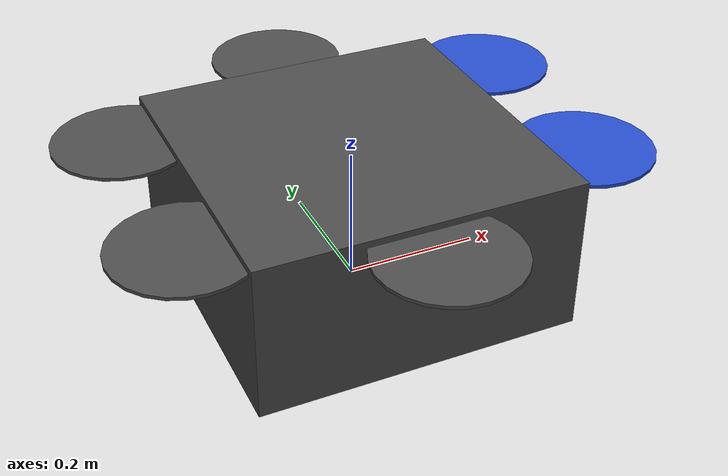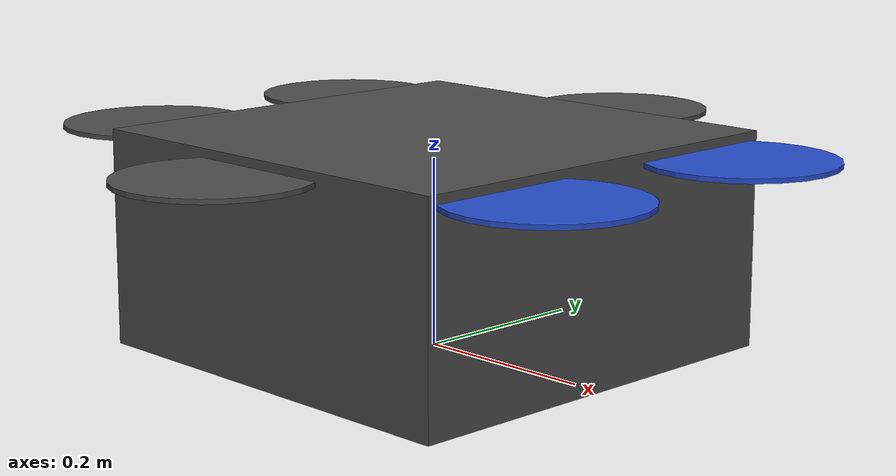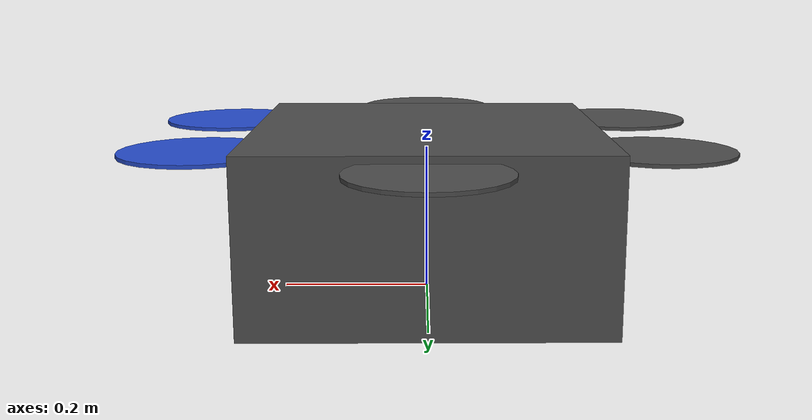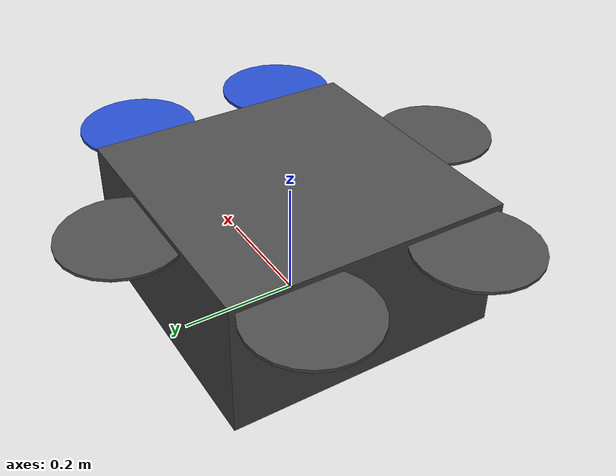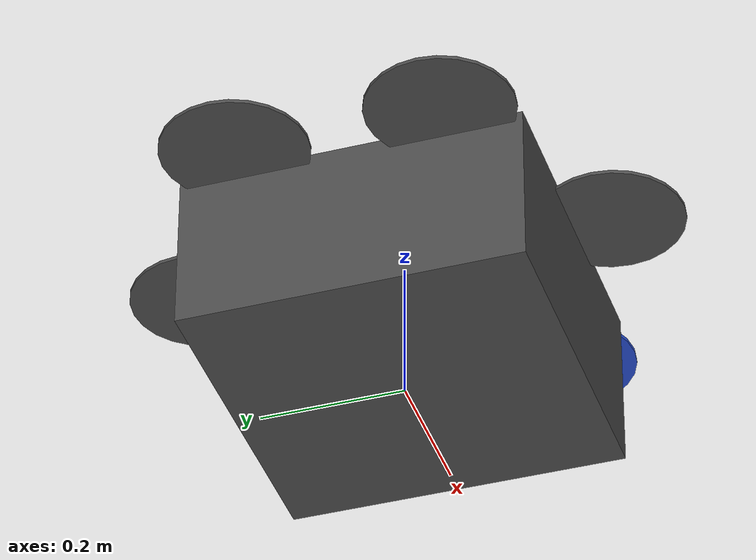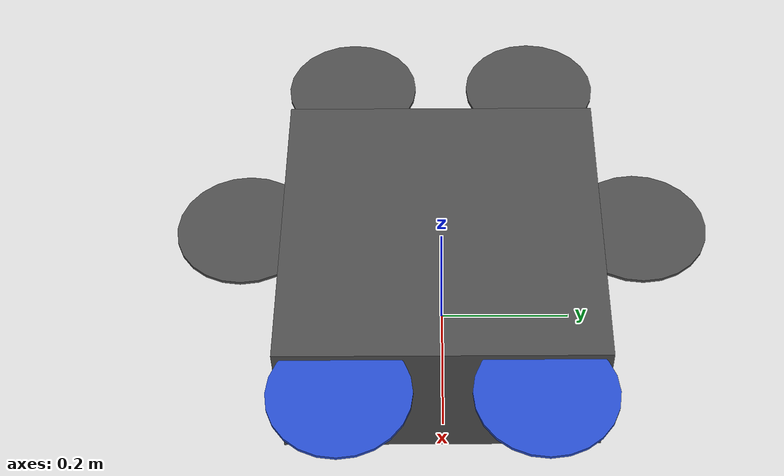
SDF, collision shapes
<?xml version='1.0'?>
<sdf version="1.6" xmlns:xacro='http://ros.org/wiki/xacro'>
  <model name="iris_demo">
    <include>
      <uri>model://iris_with_standoffs</uri>
    </include>

    <!-- plugins -->
    <plugin name="rotor_0_blade_1" filename="libLiftDragPlugin.so">
      <a0>0.3</a0>
      <alpha_stall>1.4</alpha_stall>
      <cla>4.2500</cla>
      <cda>0.10</cda>
      <cma>0.00</cma>
      <cla_stall>-0.025</cla_stall>
      <cda_stall>0.0</cda_stall>
      <cma_stall>0.0</cma_stall>
      <area>0.002</area>
      <air_density>1.2041</air_density>
      <cp>0.084 0 0</cp>
      <forward>0 -1 0</forward>
      <upward>0 0 1</upward>
      <link_name>iris::rotor_0</link_name>
    </plugin>
    <plugin name="rotor_0_blade_2" filename="libLiftDragPlugin.so">
      <a0>0.3</a0>
      <alpha_stall>1.4</alpha_stall>
      <cla>4.2500</cla>
      <cda>0.10</cda>
      <cma>0.00</cma>
      <cla_stall>-0.025</cla_stall>
      <cda_stall>0.0</cda_stall>
      <cma_stall>0.0</cma_stall>
      <area>0.002</area>
      <air_density>1.2041</air_density>
      <cp>-0.084 0 0</cp>
      <forward>0 1 0</forward>
      <upward>0 0 1</upward>
      <link_name>iris::rotor_0</link_name>
    </plugin>

    <plugin name="rotor_1_blade_1" filename="libLiftDragPlugin.so">
      <a0>0.3</a0>
      <alpha_stall>1.4</alpha_stall>
      <cla>4.2500</cla>
      <cda>0.10</cda>
      <cma>0.00</cma>
      <cla_stall>-0.025</cla_stall>
      <cda_stall>0.0</cda_stall>
      <cma_stall>0.0</cma_stall>
      <area>0.002</area>
      <air_density>1.2041</air_density>
      <cp>0.084 0 0</cp>
      <forward>0 1 0</forward>
      <upward>0 0 1</upward>
      <link_name>iris::rotor_1</link_name>
    </plugin>
    <plugin name="rotor_1_blade_2" filename="libLiftDragPlugin.so">
      <a0>0.3</a0>
      <alpha_stall>1.4</alpha_stall>
      <cla>4.2500</cla>
      <cda>0.10</cda>
      <cma>0.00</cma>
      <cla_stall>-0.025</cla_stall>
      <cda_stall>0.0</cda_stall>
      <cma_stall>0.0</cma_stall>
      <area>0.002</area>
      <air_density>1.2041</air_density>
      <cp>-0.084 0 0</cp>
      <forward>0 -1 0</forward>
      <upward>0 0 1</upward>
      <link_name>iris::rotor_1</link_name>
    </plugin>

    <plugin name="rotor_2_blade_1" filename="libLiftDragPlugin.so">
      <a0>0.3</a0>
      <alpha_stall>1.4</alpha_stall>
      <cla>4.2500</cla>
      <cda>0.10</cda>
      <cma>0.00</cma>
      <cla_stall>-0.025</cla_stall>
      <cda_stall>0.0</cda_stall>
      <cma_stall>0.0</cma_stall>
      <area>0.002</area>
      <air_density>1.2041</air_density>
      <cp>0.084 0 0</cp>
      <forward>0 -1 0</forward>
      <upward>0 0 1</upward>
      <link_name>iris::rotor_2</link_name>
    </plugin>
    <plugin name="rotor_2_blade_2" filename="libLiftDragPlugin.so">
      <a0>0.3</a0>
      <alpha_stall>1.4</alpha_stall>
      <cla>4.2500</cla>
      <cda>0.10</cda>
      <cma>0.00</cma>
      <cla_stall>-0.025</cla_stall>
      <cda_stall>0.0</cda_stall>
      <cma_stall>0.0</cma_stall>
      <area>0.002</area>
      <air_density>1.2041</air_density>
      <cp>-0.084 0 0</cp>
      <forward>0 1 0</forward>
      <upward>0 0 1</upward>
      <link_name>iris::rotor_2</link_name>
    </plugin>

    <plugin name="rotor_3_blade_1" filename="libLiftDragPlugin.so">
      <a0>0.3</a0>
      <alpha_stall>1.4</alpha_stall>
      <cla>4.2500</cla>
      <cda>0.10</cda>
      <cma>0.00</cma>
      <cla_stall>-0.025</cla_stall>
      <cda_stall>0.0</cda_stall>
      <cma_stall>0.0</cma_stall>
      <area>0.002</area>
      <air_density>1.2041</air_density>
      <cp>0.084 0 0</cp>
      <forward>0 1 0</forward>
      <upward>0 0 1</upward>
      <link_name>iris::rotor_3</link_name>
    </plugin>
    <plugin name="rotor_3_blade_2" filename="libLiftDragPlugin.so">
      <a0>0.3</a0>
      <alpha_stall>1.4</alpha_stall>
      <cla>4.2500</cla>
      <cda>0.10</cda>
      <cma>0.00</cma>
      <cla_stall>-0.025</cla_stall>
      <cda_stall>0.0</cda_stall>
      <cma_stall>0.0</cma_stall>
      <area>0.002</area>
      <air_density>1.2041</air_density>
      <cp>-0.084 0 0</cp>
      <forward>0 -1 0</forward>
      <upward>0 0 1</upward>
      <link_name>iris::rotor_3</link_name>
    </plugin>

    <plugin name="rotor_4_blade_1" filename="libLiftDragPlugin.so">
      <a0>0.3</a0>
      <alpha_stall>1.4</alpha_stall>
      <cla>4.2500</cla>
      <cda>0.10</cda>
      <cma>0.00</cma>
      <cla_stall>-0.025</cla_stall>
      <cda_stall>0.0</cda_stall>
      <cma_stall>0.0</cma_stall>
      <area>0.002</area>
      <air_density>1.2041</air_density>
      <cp>0.084 0 0</cp>
      <forward>0 1 0</forward>
      <upward>0 0 1</upward>
      <link_name>iris::rotor_4</link_name>
    </plugin>
    <plugin name="rotor_4_blade_2" filename="libLiftDragPlugin.so">
      <a0>0.3</a0>
      <alpha_stall>1.4</alpha_stall>
      <cla>4.2500</cla>
      <cda>0.10</cda>
      <cma>0.00</cma>
      <cla_stall>-0.025</cla_stall>
      <cda_stall>0.0</cda_stall>
      <cma_stall>0.0</cma_stall>
      <area>0.002</area>
      <air_density>1.2041</air_density>
      <cp>-0.084 0 0</cp>
      <forward>0 -1 0</forward>
      <upward>0 0 1</upward>
      <link_name>iris::rotor_4</link_name>
    </plugin>

    <plugin name="rotor_5_blade_1" filename="libLiftDragPlugin.so">
      <a0>0.3</a0>
      <alpha_stall>1.4</alpha_stall>
      <cla>4.2500</cla>
      <cda>0.10</cda>
      <cma>0.00</cma>
      <cla_stall>-0.025</cla_stall>
      <cda_stall>0.0</cda_stall>
      <cma_stall>0.0</cma_stall>
      <area>0.002</area>
      <air_density>1.2041</air_density>
      <cp>0.084 0 0</cp>
      <forward>0 -1 0</forward>
      <upward>0 0 1</upward>
      <link_name>iris::rotor_5</link_name>
    </plugin>
    <plugin name="rotor_5_blade_2" filename="libLiftDragPlugin.so">
      <a0>0.3</a0>
      <alpha_stall>1.4</alpha_stall>
      <cla>4.2500</cla>
      <cda>0.10</cda>
      <cma>0.00</cma>
      <cla_stall>-0.025</cla_stall>
      <cda_stall>0.0</cda_stall>
      <cma_stall>0.0</cma_stall>
      <area>0.002</area>
      <air_density>1.2041</air_density>
      <cp>-0.084 0 0</cp>
      <forward>0 1 0</forward>
      <upward>0 0 1</upward>
      <link_name>iris::rotor_5</link_name>
    </plugin>
    <plugin name="arducopter_plugin" filename="libArduPilotPlugin.so">
      <fdm_addr>127.0.0.1</fdm_addr>
      <fdm_port_in>9002</fdm_port_in>
      <fdm_port_out>9003</fdm_port_out>
      <!--
          Require by APM :
          Only change model and gazebo from XYZ to XY-Z coordinates
      -->
      <modelXYZToAirplaneXForwardZDown>0 0 0 3.141593 0 0</modelXYZToAirplaneXForwardZDown>
      <gazeboXYZToNED>0 0 0 3.141593 0 0</gazeboXYZToNED>
      <imuName>iris_demo::iris::iris/imu_link::imu_sensor</imuName>
      <connectionTimeoutMaxCount>5</connectionTimeoutMaxCount>
      <control channel="0">
      <!--
          incoming control command [0, 1]
          so offset it by 0 to get [0, 1]
          and divide max target by 1.
          offset = 0
          multiplier = 838 max rpm / 1 = 838
        -->
        <type>VELOCITY</type>
        <offset>0</offset>
        <p_gain>0.20</p_gain>
        <i_gain>0</i_gain>
        <d_gain>0</d_gain>
        <i_max>0</i_max>
        <i_min>0</i_min>
        <cmd_max>2.5</cmd_max>
        <cmd_min>-2.5</cmd_min>
        <jointName>iris::rotor_0_joint</jointName>
        <multiplier>-838</multiplier>
        <controlVelocitySlowdownSim>1</controlVelocitySlowdownSim>
      </control>
      <control channel="1">
        <type>VELOCITY</type>
        <offset>0</offset>
        <p_gain>0.20</p_gain>
        <i_gain>0</i_gain>
        <d_gain>0</d_gain>
        <i_max>0</i_max>
        <i_min>0</i_min>
        <cmd_max>2.5</cmd_max>
        <cmd_min>-2.5</cmd_min>
        <jointName>iris::rotor_1_joint</jointName>
        <multiplier>838</multiplier>
        <controlVelocitySlowdownSim>1</controlVelocitySlowdownSim>
      </control>
      <control channel="2">
        <type>VELOCITY</type>
        <offset>0</offset>
        <p_gain>0.20</p_gain>
        <i_gain>0</i_gain>
        <d_gain>0</d_gain>
        <i_max>0</i_max>
        <i_min>0</i_min>
        <cmd_max>2.5</cmd_max>
        <cmd_min>-2.5</cmd_min>
        <jointName>iris::rotor_2_joint</jointName>
        <multiplier>-838</multiplier>
        <controlVelocitySlowdownSim>1</controlVelocitySlowdownSim>
      </control>
      <control channel="3">
        <type>VELOCITY</type>
        <offset>0</offset>
        <p_gain>0.20</p_gain>
        <i_gain>0</i_gain>
        <d_gain>0</d_gain>
        <i_max>0</i_max>
        <i_min>0</i_min>
        <cmd_max>2.5</cmd_max>
        <cmd_min>-2.5</cmd_min>
        <jointName>iris::rotor_3_joint</jointName>
        <multiplier>838</multiplier>
        <controlVelocitySlowdownSim>1</controlVelocitySlowdownSim>
      </control>
      <control channel="4">
        <type>VELOCITY</type>
        <offset>0</offset>
        <p_gain>0.20</p_gain>
        <i_gain>0</i_gain>
        <d_gain>0</d_gain>
        <i_max>0</i_max>
        <i_min>0</i_min>
        <cmd_max>2.5</cmd_max>
        <cmd_min>-2.5</cmd_min>
        <jointName>iris::rotor_4_joint</jointName>
        <multiplier>838</multiplier>
        <controlVelocitySlowdownSim>1</controlVelocitySlowdownSim>
      </control>
      <control channel="5">
        <type>VELOCITY</type>
        <offset>0</offset>
        <p_gain>0.20</p_gain>
        <i_gain>0</i_gain>
        <d_gain>0</d_gain>
        <i_max>0</i_max>
        <i_min>0</i_min>
        <cmd_max>2.5</cmd_max>
        <cmd_min>-2.5</cmd_min>
        <jointName>iris::rotor_5_joint</jointName>
        <multiplier>-838</multiplier>
        <controlVelocitySlowdownSim>1</controlVelocitySlowdownSim>
      </control>
    </plugin>

  </model>
</sdf>

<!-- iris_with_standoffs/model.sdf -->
<sdf version='1.5'>
  <model name='iris'>
    <pose>0 0 0.194923 0 0 0</pose>
    <link name='base_link'>
      <velocity_decay>
        <linear>0.0</linear>
        <angular>0.0</angular>
      </velocity_decay>
      <inertial>
        <pose>0 0 0 0 0 0</pose>
        <mass>1.5</mass>
        <inertia>
          <ixx>0.008</ixx>
          <ixy>0</ixy>
          <ixz>0</ixz>
          <iyy>0.015</iyy>
          <iyz>0</iyz>
          <izz>0.017</izz>
        </inertia>
      </inertial>
      <collision name='base_link_collision'>
        <pose>0 0 -0.08 0 0 0</pose>
        <geometry>
          <box>
            <size>0.47 0.47 0.23</size>
          </box>
        </geometry>
        <surface>
          <contact>
            <ode>
              <max_vel>100.0</max_vel>
              <min_depth>0.001</min_depth>
            </ode>
          </contact>
          <friction>
            <ode>
              <mu>100000.0</mu>
              <mu2>100000.0</mu2>
            </ode>
          </friction>
        </surface>
      </collision>
      <visual name='base_link_visual'>
        <geometry>
          <mesh>
            <uri>model://iris_with_standoffs/meshes/iris.dae</uri>
          </mesh>
        </geometry>
        <material>
          <script>
            <name>Gazebo/DarkGrey</name>
          </script>
        </material>
      </visual>

      <visual name='front_left_leg_visual'>
        <pose>0.123 0.22 -0.11 0 0 0</pose>
        <geometry>
          <cylinder>
            <radius>0.005</radius>
            <length>0.17</length>
          </cylinder>
        </geometry>
        <material>
          <script>
            <name>Gazebo/FlatBlack</name>
            <uri>file://media/materials/scripts/gazebo.material</uri>
          </script>
        </material>
      </visual>
      <visual name='front_right_leg_visual'>
        <pose>0.123 -0.22 -0.11 0 0 0</pose>
        <geometry>
          <cylinder>
            <radius>0.005</radius>
            <length>0.17</length>
          </cylinder>
        </geometry>
        <material>
          <script>
            <name>Gazebo/FlatBlack</name>
            <uri>file://media/materials/scripts/gazebo.material</uri>
          </script>
        </material>
      </visual>
      <visual name='rear_left_leg_visual'>
        <pose>-0.140 0.21 -0.11 0 0 0</pose>
        <geometry>
          <cylinder>
            <radius>0.005</radius>
            <length>0.17</length>
          </cylinder>
        </geometry>
        <material>
          <script>
            <name>Gazebo/FlatBlack</name>
            <uri>file://media/materials/scripts/gazebo.material</uri>
          </script>
        </material>
      </visual>
      <visual name='rear_right_leg_visual'>
        <pose>-0.140 -0.21 -0.11 0 0 0</pose>
        <geometry>
          <cylinder>
            <radius>0.005</radius>
            <length>0.17</length>
          </cylinder>
        </geometry>
        <material>
          <script>
            <name>Gazebo/FlatBlack</name>
            <uri>file://media/materials/scripts/gazebo.material</uri>
          </script>
        </material>
      </visual>
    </link>
    <link name='iris/ground_truth/odometry_sensorgt_link'>
      <pose>0 0 0 0 -0 0</pose>
      <inertial>
        <pose>0 0 0 0 -0 0</pose>
        <mass>0.15</mass>
        <inertia>
          <ixx>0.0001</ixx>
          <ixy>0</ixy>
          <ixz>0</ixz>
          <iyy>0.0002</iyy>
          <iyz>0</iyz>
          <izz>0.0002</izz>
        </inertia>
      </inertial>
    </link>
    <joint name='iris/ground_truth/odometry_sensorgt_joint' type='revolute'>
      <child>iris/ground_truth/odometry_sensorgt_link</child>
      <parent>base_link</parent>
      <axis>
        <xyz>0 0 1</xyz>
        <limit>
          <lower>0</lower>
          <upper>0</upper>
          <effort>0</effort>
          <velocity>0</velocity>
        </limit>
        <dynamics>
          <damping>1.0</damping>
        </dynamics>
        <use_parent_model_frame>1</use_parent_model_frame>
      </axis>
      <physics>
        <ode>
          <implicit_spring_damper>1</implicit_spring_damper>
        </ode>
      </physics>
    </joint>
    <link name='iris/imu_link'>
      <inertial>
        <pose>0 0 0 0 0 0</pose>
        <mass>0.15</mass>
        <inertia>
          <ixx>0.00001</ixx>
          <ixy>0</ixy>
          <ixz>0</ixz>
          <iyy>0.00002</iyy>
          <iyz>0</iyz>
          <izz>0.00002</izz>
        </inertia>
      </inertial>
      <sensor name="imu_sensor" type="imu">
        <pose>0 0 0 3.141593 0 0</pose>
        <always_on>1</always_on>
        <update_rate>1000.0</update_rate>
      </sensor>
    </link>
    <joint name='iris/imu_joint' type='revolute'>
      <child>iris/imu_link</child>
      <parent>base_link</parent>
      <axis>
        <xyz>0 0 1</xyz>
        <limit>
          <lower>0</lower>
          <upper>0</upper>
          <effort>0</effort>
          <velocity>0</velocity>
        </limit>
        <dynamics>
          <damping>1.0</damping>
        </dynamics>
        <use_parent_model_frame>1</use_parent_model_frame>
      </axis>
      <physics>
        <ode>
          <implicit_spring_damper>1</implicit_spring_damper>
        </ode>
      </physics>
    </joint>
    <link name='rotor_0'>
      <pose>0 -0.288 0.023 0 -0 0</pose>
      <inertial>
        <pose>0 0 0 0 -0 0</pose>
        <mass>0.025</mass>
        <inertia>
          <ixx>9.75e-06</ixx>
          <ixy>0</ixy>
          <ixz>0</ixz>
          <iyy>0.000166704</iyy>
          <iyz>0</iyz>
          <izz>0.000167604</izz>
        </inertia>
      </inertial>
      <collision name='rotor_0_collision'>
        <pose>0 0 0 0 -0 0</pose>
        <geometry>
          <cylinder>
            <length>0.005</length>
            <radius>0.1</radius>
          </cylinder>
        </geometry>
        <surface>
          <contact>
            <ode/>
          </contact>
          <friction>
            <ode/>
          </friction>
        </surface>
      </collision>
      <visual name='rotor_0_visual'>
        <pose>0 0 0 0 -0 0</pose>
        <geometry>
          <mesh>
            <scale>1 1 1</scale>
            <uri>model://iris_with_standoffs/meshes/iris_prop_cw.dae</uri>
          </mesh>
        </geometry>
        <material>
          <script>
            <name>Gazebo/DarkGrey</name>
            <uri>__default__</uri>
          </script>
        </material>
      </visual>
      <gravity>1</gravity>
      <velocity_decay/>
      <self_collide>0</self_collide>
    </link>
    <joint name='rotor_0_joint' type='revolute'>
      <child>rotor_0</child>
      <parent>base_link</parent>
      <axis>
        <xyz>0 0 1</xyz>
        <limit>
          <lower>-1e+16</lower>
          <upper>1e+16</upper>
        </limit>
        <dynamics>
          <damping>0.004</damping>
        </dynamics>
        <use_parent_model_frame>1</use_parent_model_frame>
      </axis>
      <physics>
        <ode>
          <implicit_spring_damper>1</implicit_spring_damper>
        </ode>
      </physics>
    </joint>
    <link name='rotor_1'>
      <pose>0 0.288 0.023 0 -0 0</pose>
      <inertial>
        <pose>0 0 0 0 -0 0</pose>
        <mass>0.025</mass>
        <inertia>
          <ixx>9.75e-06</ixx>
          <ixy>0</ixy>
          <ixz>0</ixz>
          <iyy>0.000166704</iyy>
          <iyz>0</iyz>
          <izz>0.000167604</izz>
        </inertia>
      </inertial>
      <collision name='rotor_1_collision'>
        <pose>0 0 0 0 -0 0</pose>
        <geometry>
          <cylinder>
            <length>0.005</length>
            <radius>0.1</radius>
          </cylinder>
        </geometry>
        <surface>
          <contact>
            <ode/>
          </contact>
          <friction>
            <ode/>
          </friction>
        </surface>
      </collision>
      <visual name='rotor_1_visual'>
        <pose>0 0 0 0 -0 0</pose>
        <geometry>
          <mesh>
            <scale>1 1 1</scale>
            <uri>model://iris_with_standoffs/meshes/iris_prop_ccw.dae</uri>
          </mesh>
        </geometry>
        <material>
          <script>
            <name>Gazebo/DarkGrey</name>
            <uri>__default__</uri>
          </script>
        </material>
      </visual>
      <gravity>1</gravity>
      <velocity_decay/>
      <self_collide>0</self_collide>
    </link>
    <joint name='rotor_1_joint' type='revolute'>
      <child>rotor_1</child>
      <parent>base_link</parent>
      <axis>
        <xyz>0 0 1</xyz>
        <limit>
          <lower>-1e+16</lower>
          <upper>1e+16</upper>
        </limit>
        <dynamics>
          <damping>0.004</damping>
        </dynamics>
        <use_parent_model_frame>1</use_parent_model_frame>
      </axis>
      <physics>
        <ode>
          <implicit_spring_damper>1</implicit_spring_damper>
        </ode>
      </physics>
    </joint>
    <link name='rotor_2'>
      <pose>0.288 0.140 0.023 0 -0 0</pose>
      <inertial>
        <pose>0 0 0 0 -0 0</pose>
        <mass>0.025</mass>
        <inertia>
          <ixx>9.75e-06</ixx>
          <ixy>0</ixy>
          <ixz>0</ixz>
          <iyy>0.000166704</iyy>
          <iyz>0</iyz>
          <izz>0.000167604</izz>
        </inertia>
      </inertial>
      <collision name='rotor_2_collision'>
        <pose>0 0 0 0 -0 0</pose>
        <geometry>
          <cylinder>
            <length>0.005</length>
            <radius>0.1</radius>
          </cylinder>
        </geometry>
        <surface>
          <contact>
            <ode/>
          </contact>
          <friction>
            <ode/>
          </friction>
        </surface>
      </collision>
      <visual name='rotor_2_visual'>
        <pose>0 0 0 0 -0 0</pose>
        <geometry>
          <mesh>
            <scale>1 1 1</scale>
            <uri>model://iris_with_standoffs/meshes/iris_prop_cw.dae</uri>
          </mesh>
        </geometry>
        <material>
          <script>
            <name>Gazebo/Blue</name>
            <uri>__default__</uri>
          </script>
        </material>
      </visual>
      <gravity>1</gravity>
      <velocity_decay/>
      <self_collide>0</self_collide>
    </link>
    <joint name='rotor_2_joint' type='revolute'>
      <child>rotor_2</child>
      <parent>base_link</parent>
      <axis>
        <xyz>0 0 1</xyz>
        <limit>
          <lower>-1e+16</lower>
          <upper>1e+16</upper>
        </limit>
        <dynamics>
          <damping>0.004</damping>
        </dynamics>
        <use_parent_model_frame>1</use_parent_model_frame>
      </axis>
      <physics>
        <ode>
          <implicit_spring_damper>1</implicit_spring_damper>
        </ode>
      </physics>
    </joint>
    <link name='rotor_3'>
      <pose>-0.288 -0.140 0.023 0 -0 0</pose>
      <inertial>
        <pose>0 0 0 0 -0 0</pose>
        <mass>0.025</mass>
        <inertia>
          <ixx>9.75e-06</ixx>
          <ixy>0</ixy>
          <ixz>0</ixz>
          <iyy>0.000166704</iyy>
          <iyz>0</iyz>
          <izz>0.000167604</izz>
        </inertia>
      </inertial>
      <collision name='rotor_3_collision'>
        <pose>0 0 0 0 -0 0</pose>
        <geometry>
          <cylinder>
            <length>0.005</length>
            <radius>0.1</radius>
          </cylinder>
        </geometry>
        <surface>
          <contact>
            <ode/>
          </contact>
          <friction>
            <ode/>
          </friction>
        </surface>
      </collision>
      <visual name='rotor_3_visual'>
        <pose>0 0 0 0 -0 0</pose>
        <geometry>
          <mesh>
            <scale>1 1 1</scale>
            <uri>model://iris_with_standoffs/meshes/iris_prop_ccw.dae</uri>
          </mesh>
        </geometry>
        <material>
          <script>
            <name>Gazebo/DarkGrey</name>
            <uri>__default__</uri>
          </script>
        </material>
      </visual>
      <gravity>1</gravity>
      <velocity_decay/>
      <self_collide>0</self_collide>
    </link>
    <joint name='rotor_3_joint' type='revolute'>
      <child>rotor_3</child>
      <parent>base_link</parent>
      <axis>
        <xyz>0 0 1</xyz>
        <limit>
          <lower>-1e+16</lower>
          <upper>1e+16</upper>
        </limit>
        <dynamics>
          <damping>0.004</damping>
        </dynamics>
        <use_parent_model_frame>1</use_parent_model_frame>
      </axis>
      <physics>
        <ode>
          <implicit_spring_damper>1</implicit_spring_damper>
        </ode>
      </physics>
    </joint>
    <link name='rotor_4'>
      <pose>0.288 -0.140 0.023 0 -0 0</pose>
      <inertial>
        <pose>0 0 0 0 -0 0</pose>
        <mass>0.025</mass>
        <inertia>
          <ixx>9.75e-06</ixx>
          <ixy>0</ixy>
          <ixz>0</ixz>
          <iyy>0.000166704</iyy>
          <iyz>0</iyz>
          <izz>0.000167604</izz>
        </inertia>
      </inertial>
      <collision name='rotor_4_collision'>
        <pose>0 0 0 0 -0 0</pose>
        <geometry>
          <cylinder>
            <length>0.005</length>
            <radius>0.1</radius>
          </cylinder>
        </geometry>
        <surface>
          <contact>
            <ode/>
          </contact>
          <friction>
            <ode/>
          </friction>
        </surface>
      </collision>
      <visual name='rotor_4_visual'>
        <pose>0 0 0 0 -0 0</pose>
        <geometry>
          <mesh>
            <scale>1 1 1</scale>
            <uri>model://iris_with_standoffs/meshes/iris_prop_ccw.dae</uri>
          </mesh>
        </geometry>
        <material>
          <script>
            <name>Gazebo/Blue</name>
            <uri>__default__</uri>
          </script>
        </material>
      </visual>
      <gravity>1</gravity>
      <velocity_decay/>
      <self_collide>0</self_collide>
    </link>
    <joint name='rotor_4_joint' type='revolute'>
      <child>rotor_4</child>
      <parent>base_link</parent>
      <axis>
        <xyz>0 0 1</xyz>
        <limit>
          <lower>-1e+16</lower>
          <upper>1e+16</upper>
        </limit>
        <dynamics>
          <damping>0.004</damping>
        </dynamics>
        <use_parent_model_frame>1</use_parent_model_frame>
      </axis>
      <physics>
        <ode>
          <implicit_spring_damper>1</implicit_spring_damper>
        </ode>
      </physics>
    </joint>
    <link name='rotor_5'>
      <pose>-0.288 0.140 0.023 0 -0 0</pose>
      <inertial>
        <pose>0 0 0 0 -0 0</pose>
        <mass>0.025</mass>
        <inertia>
          <ixx>9.75e-06</ixx>
          <ixy>0</ixy>
          <ixz>0</ixz>
          <iyy>0.000166704</iyy>
          <iyz>0</iyz>
          <izz>0.000167604</izz>
        </inertia>
      </inertial>
      <collision name='rotor_5_collision'>
        <pose>0 0 0 0 -0 0</pose>
        <geometry>
          <cylinder>
            <length>0.005</length>
            <radius>0.1</radius>
          </cylinder>
        </geometry>
        <surface>
          <contact>
            <ode/>
          </contact>
          <friction>
            <ode/>
          </friction>
        </surface>
      </collision>
      <visual name='rotor_5_visual'>
        <pose>0 0 0 0 -0 0</pose>
        <geometry>
          <mesh>
            <scale>1 1 1</scale>
            <uri>model://iris_with_standoffs/meshes/iris_prop_cw.dae</uri>
          </mesh>
        </geometry>
        <material>
          <script>
            <name>Gazebo/DarkGrey</name>
            <uri>__default__</uri>
          </script>
        </material>
      </visual>
      <gravity>1</gravity>
      <velocity_decay/>
      <self_collide>0</self_collide>
    </link>
    <joint name='rotor_5_joint' type='revolute'>
      <child>rotor_5</child>
      <parent>base_link</parent>
      <axis>
        <xyz>0 0 1</xyz>
        <limit>
          <lower>-1e+16</lower>
          <upper>1e+16</upper>
        </limit>
        <dynamics>
          <damping>0.004</damping>
        </dynamics>
        <use_parent_model_frame>1</use_parent_model_frame>
      </axis>
      <physics>
        <ode>
          <implicit_spring_damper>1</implicit_spring_damper>
        </ode>
      </physics>
    </joint>
    <static>0</static>
  </model>
</sdf>
